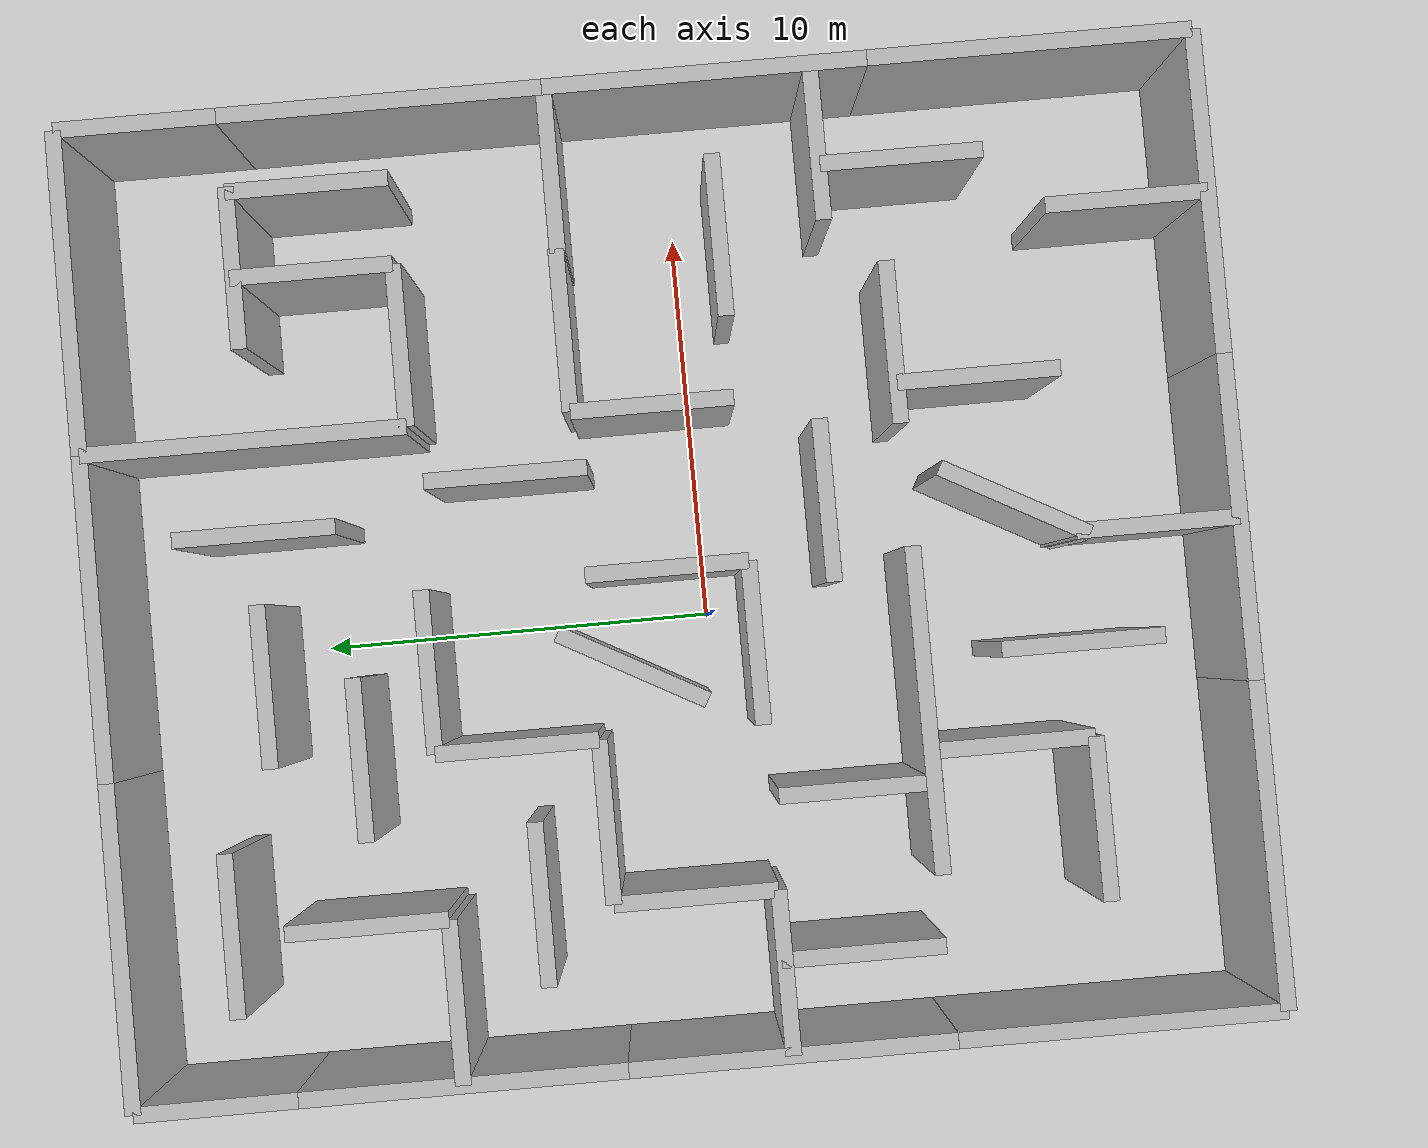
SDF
<sdf version="1.7">
 <world name="default">
  <light name="sun" type="directional">
   <pose>0 0 10 0 -0 0</pose>
   <diffuse>0.8 0.8 0.8 1</diffuse>
   <specular>0.2 0.2 0.2 1</specular>
   <attenuation>
    <range>1000</range>
    <constant>0.9</constant>
    <linear>0.01</linear>
    <quadratic>0.001</quadratic>
   </attenuation>
   <direction>-0.5 0.1 -0.9</direction>
   <spot><inner_angle>0</inner_angle><outer_angle>0</outer_angle><falloff>0</falloff></spot>
  </light>
  <model name="ground_plane">
   <static>1</static>
   <link name="link">
    <collision name="collision">
     <geometry><plane><normal>0 0 1</normal><size>100 100</size></plane></geometry>
     <surface><friction><ode><mu>100</mu><mu2>50</mu2></ode></friction></surface>
    </collision>
    <visual name="visual">
     <cast_shadows>0</cast_shadows>
     <geometry><plane><normal>0 0 1</normal><size>100 100</size></plane></geometry>
     <material>
      <script><uri>file://media/materials/scripts/gazebo.material</uri><name>Gazebo/Grey</name></script>
     </material>
    </visual>
   </link>
  </model>
  <gravity>0 0 -9.8</gravity>
  <magnetic_field>6e-06 2.3e-05 -4.2e-05</magnetic_field>
  <atmosphere type="adiabatic"/>
  <physics type="ode">
   <max_step_size>0.001</max_step_size>
   <real_time_factor>1</real_time_factor>
   <real_time_update_rate>1000</real_time_update_rate>
  </physics>
  <scene><ambient>0.4 0.4 0.4 1</ambient><background>0.7 0.7 0.7 1</background><shadows>1</shadows></scene>
  <audio><device>default</device></audio>
  <spherical_coordinates>
   <surface_model>EARTH_WGS84</surface_model>
   <latitude_deg>0</latitude_deg>
   <longitude_deg>0</longitude_deg>
   <elevation>0</elevation>
   <heading_deg>0</heading_deg>
  </spherical_coordinates>
  <model name="smaze2d">
   <frame name="w1::__model__" attached_to="w1::link">
    <pose relative_to="__model__">0 4 0 0 -0 1.5708</pose>
   </frame>
   <static>1</static>
   <link name="w1::link">
    <pose relative_to="w1::__model__">0 0 2.5 0 -0 0</pose>
    <collision name="collision"><geometry><box><size>8 0.4 5</size></box></geometry></collision>
    <visual name="visual">
     <geometry><box><size>8 0.4 5</size></box></geometry>
     <material>
      <script>
       <uri>model://smaze_wall/materials/scripts</uri>
       <uri>model://smaze_wall/materials/textures</uri>
       <name>vrc/smaze_wall</name>
      </script>
     </material>
    </visual>
   </link>
   <frame name="w2::__model__" attached_to="w2::link">
    <pose relative_to="__model__">0 12 0 0 -0 1.5708</pose>
   </frame>
   <static>1</static>
   <link name="w2::link">
    <pose relative_to="w2::__model__">0 0 2.5 0 -0 0</pose>
    <collision name="collision"><geometry><box><size>8 0.4 5</size></box></geometry></collision>
    <visual name="visual">
     <geometry><box><size>8 0.4 5</size></box></geometry>
     <material>
      <script>
       <uri>model://smaze_wall/materials/scripts</uri>
       <uri>model://smaze_wall/materials/textures</uri>
       <name>vrc/smaze_wall</name>
      </script>
     </material>
    </visual>
   </link>
   <frame name="w3::__model__" attached_to="w3::link">
    <pose relative_to="__model__">0 20 0 0 -0 1.5708</pose>
   </frame>
   <static>1</static>
   <link name="w3::link">
    <pose relative_to="w3::__model__">0 0 2.5 0 -0 0</pose>
    <collision name="collision"><geometry><box><size>8 0.4 5</size></box></geometry></collision>
    <visual name="visual">
     <geometry><box><size>8 0.4 5</size></box></geometry>
     <material>
      <script>
       <uri>model://smaze_wall/materials/scripts</uri>
       <uri>model://smaze_wall/materials/textures</uri>
       <name>vrc/smaze_wall</name>
      </script>
     </material>
    </visual>
   </link>
   <frame name="w4::__model__" attached_to="w4::link">
    <pose relative_to="__model__">0 26 0 0 -0 1.5708</pose>
   </frame>
   <static>1</static>
   <link name="w4::link">
    <pose relative_to="w4::__model__">0 0 2.5 0 -0 0</pose>
    <collision name="collision"><geometry><box><size>4 0.4 5</size></box></geometry></collision>
    <visual name="visual">
     <geometry><box><size>4 0.4 5</size></box></geometry>
     <material>
      <script>
       <uri>model://smaze_wall_short/materials/scripts</uri>
       <uri>model://smaze_wall_short/materials/textures</uri>
       <name>vrc/smaze_wall_short</name>
      </script>
     </material>
    </visual>
   </link>
   <frame name="w5::__model__" attached_to="w5::link">
    <pose relative_to="__model__">24 4 0 0 -0 1.5708</pose>
   </frame>
   <static>1</static>
   <link name="w5::link">
    <pose relative_to="w5::__model__">0 0 2.5 0 -0 0</pose>
    <collision name="collision"><geometry><box><size>8 0.4 5</size></box></geometry></collision>
    <visual name="visual">
     <geometry><box><size>8 0.4 5</size></box></geometry>
     <material>
      <script>
       <uri>model://smaze_wall/materials/scripts</uri>
       <uri>model://smaze_wall/materials/textures</uri>
       <name>vrc/smaze_wall</name>
      </script>
     </material>
    </visual>
   </link>
   <frame name="w6::__model__" attached_to="w6::link">
    <pose relative_to="__model__">24 12 0 0 -0 1.5708</pose>
   </frame>
   <static>1</static>
   <link name="w6::link">
    <pose relative_to="w6::__model__">0 0 2.5 0 -0 0</pose>
    <collision name="collision"><geometry><box><size>8 0.4 5</size></box></geometry></collision>
    <visual name="visual">
     <geometry><box><size>8 0.4 5</size></box></geometry>
     <material>
      <script>
       <uri>model://smaze_wall/materials/scripts</uri>
       <uri>model://smaze_wall/materials/textures</uri>
       <name>vrc/smaze_wall</name>
      </script>
     </material>
    </visual>
   </link>
   <frame name="w7::__model__" attached_to="w7::link">
    <pose relative_to="__model__">24 20 0 0 -0 1.5708</pose>
   </frame>
   <static>1</static>
   <link name="w7::link">
    <pose relative_to="w7::__model__">0 0 2.5 0 -0 0</pose>
    <collision name="collision"><geometry><box><size>8 0.4 5</size></box></geometry></collision>
    <visual name="visual">
     <geometry><box><size>8 0.4 5</size></box></geometry>
     <material>
      <script>
       <uri>model://smaze_wall/materials/scripts</uri>
       <uri>model://smaze_wall/materials/textures</uri>
       <name>vrc/smaze_wall</name>
      </script>
     </material>
    </visual>
   </link>
   <frame name="w8::__model__" attached_to="w8::link">
    <pose relative_to="__model__">24 26 0 0 -0 1.5708</pose>
   </frame>
   <static>1</static>
   <link name="w8::link">
    <pose relative_to="w8::__model__">0 0 2.5 0 -0 0</pose>
    <collision name="collision"><geometry><box><size>4 0.4 5</size></box></geometry></collision>
    <visual name="visual">
     <geometry><box><size>4 0.4 5</size></box></geometry>
     <material>
      <script>
       <uri>model://smaze_wall_short/materials/scripts</uri>
       <uri>model://smaze_wall_short/materials/textures</uri>
       <name>vrc/smaze_wall_short</name>
      </script>
     </material>
    </visual>
   </link>
   <frame name="w11::__model__" attached_to="w11::link"><pose relative_to="__model__">4 0 0 0 -0 0</pose></frame>
   <static>1</static>
   <link name="w11::link">
    <pose relative_to="w11::__model__">0 0 2.5 0 -0 0</pose>
    <collision name="collision"><geometry><box><size>8 0.4 5</size></box></geometry></collision>
    <visual name="visual">
     <geometry><box><size>8 0.4 5</size></box></geometry>
     <material>
      <script>
       <uri>model://smaze_wall/materials/scripts</uri>
       <uri>model://smaze_wall/materials/textures</uri>
       <name>vrc/smaze_wall</name>
      </script>
     </material>
    </visual>
   </link>
   <frame name="w12::__model__" attached_to="w12::link">
    <pose relative_to="__model__">12 0 0 0 -0 0</pose>
   </frame>
   <static>1</static>
   <link name="w12::link">
    <pose relative_to="w12::__model__">0 0 2.5 0 -0 0</pose>
    <collision name="collision"><geometry><box><size>8 0.4 5</size></box></geometry></collision>
    <visual name="visual">
     <geometry><box><size>8 0.4 5</size></box></geometry>
     <material>
      <script>
       <uri>model://smaze_wall/materials/scripts</uri>
       <uri>model://smaze_wall/materials/textures</uri>
       <name>vrc/smaze_wall</name>
      </script>
     </material>
    </visual>
   </link>
   <frame name="w13::__model__" attached_to="w13::link">
    <pose relative_to="__model__">20 0 0 0 -0 0</pose>
   </frame>
   <static>1</static>
   <link name="w13::link">
    <pose relative_to="w13::__model__">0 0 2.5 0 -0 0</pose>
    <collision name="collision"><geometry><box><size>8 0.4 5</size></box></geometry></collision>
    <visual name="visual">
     <geometry><box><size>8 0.4 5</size></box></geometry>
     <material>
      <script>
       <uri>model://smaze_wall/materials/scripts</uri>
       <uri>model://smaze_wall/materials/textures</uri>
       <name>vrc/smaze_wall</name>
      </script>
     </material>
    </visual>
   </link>
   <frame name="w14::__model__" attached_to="w14::link">
    <pose relative_to="__model__">4 28 0 0 -0 0</pose>
   </frame>
   <static>1</static>
   <link name="w14::link">
    <pose relative_to="w14::__model__">0 0 2.5 0 -0 0</pose>
    <collision name="collision"><geometry><box><size>8 0.4 5</size></box></geometry></collision>
    <visual name="visual">
     <geometry><box><size>8 0.4 5</size></box></geometry>
     <material>
      <script>
       <uri>model://smaze_wall/materials/scripts</uri>
       <uri>model://smaze_wall/materials/textures</uri>
       <name>vrc/smaze_wall</name>
      </script>
     </material>
    </visual>
   </link>
   <frame name="w15::__model__" attached_to="w15::link">
    <pose relative_to="__model__">12 28 0 0 -0 0</pose>
   </frame>
   <static>1</static>
   <link name="w15::link">
    <pose relative_to="w15::__model__">0 0 2.5 0 -0 0</pose>
    <collision name="collision"><geometry><box><size>8 0.4 5</size></box></geometry></collision>
    <visual name="visual">
     <geometry><box><size>8 0.4 5</size></box></geometry>
     <material>
      <script>
       <uri>model://smaze_wall/materials/scripts</uri>
       <uri>model://smaze_wall/materials/textures</uri>
       <name>vrc/smaze_wall</name>
      </script>
     </material>
    </visual>
   </link>
   <frame name="w16::__model__" attached_to="w16::link">
    <pose relative_to="__model__">20 28 0 0 -0 0</pose>
   </frame>
   <static>1</static>
   <link name="w16::link">
    <pose relative_to="w16::__model__">0 0 2.5 0 -0 0</pose>
    <collision name="collision"><geometry><box><size>8 0.4 5</size></box></geometry></collision>
    <visual name="visual">
     <geometry><box><size>8 0.4 5</size></box></geometry>
     <material>
      <script>
       <uri>model://smaze_wall/materials/scripts</uri>
       <uri>model://smaze_wall/materials/textures</uri>
       <name>vrc/smaze_wall</name>
      </script>
     </material>
    </visual>
   </link>
   <frame name="w17::__model__" attached_to="w17::link">
    <pose relative_to="__model__">10 24 0 0 -0 0</pose>
   </frame>
   <static>1</static>
   <link name="w17::link">
    <pose relative_to="w17::__model__">0 0 2.5 0 -0 0</pose>
    <collision name="collision"><geometry><box><size>4 0.4 5</size></box></geometry></collision>
    <visual name="visual">
     <geometry><box><size>4 0.4 5</size></box></geometry>
     <material>
      <script>
       <uri>model://smaze_wall_short/materials/scripts</uri>
       <uri>model://smaze_wall_short/materials/textures</uri>
       <name>vrc/smaze_wall_short</name>
      </script>
     </material>
    </visual>
   </link>
   <frame name="w18::__model__" attached_to="w18::link">
    <pose relative_to="__model__">10 12 0 0 -0 0</pose>
   </frame>
   <static>1</static>
   <link name="w18::link">
    <pose relative_to="w18::__model__">0 0 2.5 0 -0 0</pose>
    <collision name="collision"><geometry><box><size>4 0.4 5</size></box></geometry></collision>
    <visual name="visual">
     <geometry><box><size>4 0.4 5</size></box></geometry>
     <material>
      <script>
       <uri>model://smaze_wall_short/materials/scripts</uri>
       <uri>model://smaze_wall_short/materials/textures</uri>
       <name>vrc/smaze_wall_short</name>
      </script>
     </material>
    </visual>
   </link>
   <frame name="w19::__model__" attached_to="w19::link"><pose relative_to="__model__">8 8 0 0 -0 0</pose></frame>
   <static>1</static>
   <link name="w19::link">
    <pose relative_to="w19::__model__">0 0 2.5 0 -0 0</pose>
    <collision name="collision"><geometry><box><size>8 0.4 5</size></box></geometry></collision>
    <visual name="visual">
     <geometry><box><size>8 0.4 5</size></box></geometry>
     <material>
      <script>
       <uri>model://smaze_wall/materials/scripts</uri>
       <uri>model://smaze_wall/materials/textures</uri>
       <name>vrc/smaze_wall</name>
      </script>
     </material>
    </visual>
   </link>
   <frame name="w20::__model__" attached_to="w20::link"><pose relative_to="__model__">5 4 0 0 -0 0</pose></frame>
   <static>1</static>
   <link name="w20::link">
    <pose relative_to="w20::__model__">0 0 2.5 0 -0 0</pose>
    <collision name="collision"><geometry><box><size>4 0.4 5</size></box></geometry></collision>
    <visual name="visual">
     <geometry><box><size>4 0.4 5</size></box></geometry>
     <material>
      <script>
       <uri>model://smaze_wall_short/materials/scripts</uri>
       <uri>model://smaze_wall_short/materials/textures</uri>
       <name>vrc/smaze_wall_short</name>
      </script>
     </material>
    </visual>
   </link>
   <frame name="w21::__model__" attached_to="w21::link">
    <pose relative_to="__model__">17 8 0 0 -0 0</pose>
   </frame>
   <static>1</static>
   <link name="w21::link">
    <pose relative_to="w21::__model__">0 0 2.5 0 -0 0</pose>
    <collision name="collision"><geometry><box><size>4 0.4 5</size></box></geometry></collision>
    <visual name="visual">
     <geometry><box><size>4 0.4 5</size></box></geometry>
     <material>
      <script>
       <uri>model://smaze_wall_short/materials/scripts</uri>
       <uri>model://smaze_wall_short/materials/textures</uri>
       <name>vrc/smaze_wall_short</name>
      </script>
     </material>
    </visual>
   </link>
   <frame name="w22::__model__" attached_to="w22::link">
    <pose relative_to="__model__">20 12 0 0 -0 0</pose>
   </frame>
   <static>1</static>
   <link name="w22::link">
    <pose relative_to="w22::__model__">0 0 2.5 0 -0 0</pose>
    <collision name="collision"><geometry><box><size>4 0.4 5</size></box></geometry></collision>
    <visual name="visual">
     <geometry><box><size>4 0.4 5</size></box></geometry>
     <material>
      <script>
       <uri>model://smaze_wall_short/materials/scripts</uri>
       <uri>model://smaze_wall_short/materials/textures</uri>
       <name>vrc/smaze_wall_short</name>
      </script>
     </material>
    </visual>
   </link>
   <frame name="w23::__model__" attached_to="w23::link">
    <pose relative_to="__model__">16 24 0 0 -0 1.5708</pose>
   </frame>
   <static>1</static>
   <link name="w23::link">
    <pose relative_to="w23::__model__">0 0 2.5 0 -0 0</pose>
    <collision name="collision"><geometry><box><size>8 0.4 5</size></box></geometry></collision>
    <visual name="visual">
     <geometry><box><size>8 0.4 5</size></box></geometry>
     <material>
      <script>
       <uri>model://smaze_wall/materials/scripts</uri>
       <uri>model://smaze_wall/materials/textures</uri>
       <name>vrc/smaze_wall</name>
      </script>
     </material>
    </visual>
   </link>
   <frame name="s1::__model__" attached_to="s1::link">
    <pose relative_to="__model__">20 22 0 0 -0 1.5708</pose>
   </frame>
   <static>1</static>
   <link name="s1::link">
    <pose relative_to="s1::__model__">0 0 2.5 0 -0 0</pose>
    <collision name="collision"><geometry><box><size>4 0.4 5</size></box></geometry></collision>
    <visual name="visual">
     <geometry><box><size>4 0.4 5</size></box></geometry>
     <material>
      <script>
       <uri>model://smaze_wall_short/materials/scripts</uri>
       <uri>model://smaze_wall_short/materials/textures</uri>
       <name>vrc/smaze_wall_short</name>
      </script>
     </material>
    </visual>
   </link>
   <frame name="s2::__model__" attached_to="s2::link">
    <pose relative_to="__model__">16 14 0 0 -0 1.5708</pose>
   </frame>
   <static>1</static>
   <link name="s2::link">
    <pose relative_to="s2::__model__">0 0 2.5 0 -0 0</pose>
    <collision name="collision"><geometry><box><size>4 0.4 5</size></box></geometry></collision>
    <visual name="visual">
     <geometry><box><size>4 0.4 5</size></box></geometry>
     <material>
      <script>
       <uri>model://smaze_wall_short/materials/scripts</uri>
       <uri>model://smaze_wall_short/materials/textures</uri>
       <name>vrc/smaze_wall_short</name>
      </script>
     </material>
    </visual>
   </link>
   <frame name="s3::__model__" attached_to="s3::link">
    <pose relative_to="__model__">16 6 0 0 -0 1.5708</pose>
   </frame>
   <static>1</static>
   <link name="s3::link">
    <pose relative_to="s3::__model__">0 0 2.5 0 -0 0</pose>
    <collision name="collision"><geometry><box><size>4 0.4 5</size></box></geometry></collision>
    <visual name="visual">
     <geometry><box><size>4 0.4 5</size></box></geometry>
     <material>
      <script>
       <uri>model://smaze_wall_short/materials/scripts</uri>
       <uri>model://smaze_wall_short/materials/textures</uri>
       <name>vrc/smaze_wall_short</name>
      </script>
     </material>
    </visual>
   </link>
   <frame name="s4::__model__" attached_to="s4::link">
    <pose relative_to="__model__">20 2 0 0 -0 1.5708</pose>
   </frame>
   <static>1</static>
   <link name="s4::link">
    <pose relative_to="s4::__model__">0 0 2.5 0 -0 0</pose>
    <collision name="collision"><geometry><box><size>4 0.4 5</size></box></geometry></collision>
    <visual name="visual">
     <geometry><box><size>4 0.4 5</size></box></geometry>
     <material>
      <script>
       <uri>model://smaze_wall_short/materials/scripts</uri>
       <uri>model://smaze_wall_short/materials/textures</uri>
       <name>vrc/smaze_wall_short</name>
      </script>
     </material>
    </visual>
   </link>
   <frame name="s5::__model__" attached_to="s5::link">
    <pose relative_to="__model__">12 2 0 0 -0 1.5708</pose>
   </frame>
   <static>1</static>
   <link name="s5::link">
    <pose relative_to="s5::__model__">0 0 2.5 0 -0 0</pose>
    <collision name="collision"><geometry><box><size>4 0.4 5</size></box></geometry></collision>
    <visual name="visual">
     <geometry><box><size>4 0.4 5</size></box></geometry>
     <material>
      <script>
       <uri>model://smaze_wall_short/materials/scripts</uri>
       <uri>model://smaze_wall_short/materials/textures</uri>
       <name>vrc/smaze_wall_short</name>
      </script>
     </material>
    </visual>
   </link>
   <frame name="s6::__model__" attached_to="s6::link">
    <pose relative_to="__model__">7 6 0 0 -0 1.5708</pose>
   </frame>
   <static>1</static>
   <link name="s6::link">
    <pose relative_to="s6::__model__">0 0 2.5 0 -0 0</pose>
    <collision name="collision"><geometry><box><size>4 0.4 5</size></box></geometry></collision>
    <visual name="visual">
     <geometry><box><size>4 0.4 5</size></box></geometry>
     <material>
      <script>
       <uri>model://smaze_wall_short/materials/scripts</uri>
       <uri>model://smaze_wall_short/materials/textures</uri>
       <name>vrc/smaze_wall_short</name>
      </script>
     </material>
    </visual>
   </link>
   <frame name="s7::__model__" attached_to="s7::link">
    <pose relative_to="__model__">4 14 0 0 -0 1.5708</pose>
   </frame>
   <static>1</static>
   <link name="s7::link">
    <pose relative_to="s7::__model__">0 0 2.5 0 -0 0</pose>
    <collision name="collision"><geometry><box><size>4 0.4 5</size></box></geometry></collision>
    <visual name="visual">
     <geometry><box><size>4 0.4 5</size></box></geometry>
     <material>
      <script>
       <uri>model://smaze_wall_short/materials/scripts</uri>
       <uri>model://smaze_wall_short/materials/textures</uri>
       <name>vrc/smaze_wall_short</name>
      </script>
     </material>
    </visual>
   </link>
   <frame name="s8::__model__" attached_to="s8::link">
    <pose relative_to="__model__">8 18 0 0 -0 1.5708</pose>
   </frame>
   <static>1</static>
   <link name="s8::link">
    <pose relative_to="s8::__model__">0 0 2.5 0 -0 0</pose>
    <collision name="collision"><geometry><box><size>4 0.4 5</size></box></geometry></collision>
    <visual name="visual">
     <geometry><box><size>4 0.4 5</size></box></geometry>
     <material>
      <script>
       <uri>model://smaze_wall_short/materials/scripts</uri>
       <uri>model://smaze_wall_short/materials/textures</uri>
       <name>vrc/smaze_wall_short</name>
      </script>
     </material>
    </visual>
   </link>
   <frame name="s9::__model__" attached_to="s9::link">
    <pose relative_to="__model__">4 22 0 0 -0 1.5708</pose>
   </frame>
   <static>1</static>
   <link name="s9::link">
    <pose relative_to="s9::__model__">0 0 2.5 0 -0 0</pose>
    <collision name="collision"><geometry><box><size>4 0.4 5</size></box></geometry></collision>
    <visual name="visual">
     <geometry><box><size>4 0.4 5</size></box></geometry>
     <material>
      <script>
       <uri>model://smaze_wall_short/materials/scripts</uri>
       <uri>model://smaze_wall_short/materials/textures</uri>
       <name>vrc/smaze_wall_short</name>
      </script>
     </material>
    </visual>
   </link>
   <frame name="s10::__model__" attached_to="s10::link">
    <pose relative_to="__model__">12 14 0 0 -0 1.5708</pose>
   </frame>
   <static>1</static>
   <link name="s10::link">
    <pose relative_to="s10::__model__">0 0 2.5 0 -0 0</pose>
    <collision name="collision"><geometry><box><size>4 0.4 5</size></box></geometry></collision>
    <visual name="visual">
     <geometry><box><size>4 0.4 5</size></box></geometry>
     <material>
      <script>
       <uri>model://smaze_wall_short/materials/scripts</uri>
       <uri>model://smaze_wall_short/materials/textures</uri>
       <name>vrc/smaze_wall_short</name>
      </script>
     </material>
    </visual>
   </link>
   <frame name="v1::__model__" attached_to="v1::link"><pose relative_to="__model__">2 12 0 0 -0 0</pose></frame>
   <static>1</static>
   <link name="v1::link">
    <pose relative_to="v1::__model__">0 0 2.5 0 -0 0</pose>
    <collision name="collision"><geometry><box><size>4 0.4 5</size></box></geometry></collision>
    <visual name="visual">
     <geometry><box><size>4 0.4 5</size></box></geometry>
     <material>
      <script>
       <uri>model://smaze_wall_short/materials/scripts</uri>
       <uri>model://smaze_wall_short/materials/textures</uri>
       <name>vrc/smaze_wall_short</name>
      </script>
     </material>
    </visual>
   </link>
   <frame name="v2::__model__" attached_to="v2::link"><pose relative_to="__model__">2 20 0 0 -0 0</pose></frame>
   <static>1</static>
   <link name="v2::link">
    <pose relative_to="v2::__model__">0 0 2.5 0 -0 0</pose>
    <collision name="collision"><geometry><box><size>4 0.4 5</size></box></geometry></collision>
    <visual name="visual">
     <geometry><box><size>4 0.4 5</size></box></geometry>
     <material>
      <script>
       <uri>model://smaze_wall_short/materials/scripts</uri>
       <uri>model://smaze_wall_short/materials/textures</uri>
       <name>vrc/smaze_wall_short</name>
      </script>
     </material>
    </visual>
   </link>
   <frame name="v3::__model__" attached_to="v3::link"><pose relative_to="__model__">6 16 0 0 -0 0</pose></frame>
   <static>1</static>
   <link name="v3::link">
    <pose relative_to="v3::__model__">0 0 2.5 0 -0 0</pose>
    <collision name="collision"><geometry><box><size>4 0.4 5</size></box></geometry></collision>
    <visual name="visual">
     <geometry><box><size>4 0.4 5</size></box></geometry>
     <material>
      <script>
       <uri>model://smaze_wall_short/materials/scripts</uri>
       <uri>model://smaze_wall_short/materials/textures</uri>
       <name>vrc/smaze_wall_short</name>
      </script>
     </material>
    </visual>
   </link>
   <frame name="v4::__model__" attached_to="v4::link"><pose relative_to="__model__">10 20 0 0 -0 0</pose></frame>
   <static>1</static>
   <link name="v4::link">
    <pose relative_to="v4::__model__">0 0 2.5 0 -0 0</pose>
    <collision name="collision"><geometry><box><size>4 0.4 5</size></box></geometry></collision>
    <visual name="visual">
     <geometry><box><size>4 0.4 5</size></box></geometry>
     <material>
      <script>
       <uri>model://smaze_wall_short/materials/scripts</uri>
       <uri>model://smaze_wall_short/materials/textures</uri>
       <name>vrc/smaze_wall_short</name>
      </script>
     </material>
    </visual>
   </link>
   <frame name="v5::__model__" attached_to="v5::link"><pose relative_to="__model__">18 16 0 0 -0 0</pose></frame>
   <static>1</static>
   <link name="v5::link">
    <pose relative_to="v5::__model__">0 0 2.5 0 -0 0</pose>
    <collision name="collision"><geometry><box><size>4 0.4 5</size></box></geometry></collision>
    <visual name="visual">
     <geometry><box><size>4 0.4 5</size></box></geometry>
     <material>
      <script>
       <uri>model://smaze_wall_short/materials/scripts</uri>
       <uri>model://smaze_wall_short/materials/textures</uri>
       <name>vrc/smaze_wall_short</name>
      </script>
     </material>
    </visual>
   </link>
   <frame name="v6::__model__" attached_to="v6::link"><pose relative_to="__model__">18 20 0 0 -0 0</pose></frame>
   <static>1</static>
   <link name="v6::link">
    <pose relative_to="v6::__model__">0 0 2.5 0 -0 0</pose>
    <collision name="collision"><geometry><box><size>4 0.4 5</size></box></geometry></collision>
    <visual name="visual">
     <geometry><box><size>4 0.4 5</size></box></geometry>
     <material>
      <script>
       <uri>model://smaze_wall_short/materials/scripts</uri>
       <uri>model://smaze_wall_short/materials/textures</uri>
       <name>vrc/smaze_wall_short</name>
      </script>
     </material>
    </visual>
   </link>
   <pose>-10.8075 -13.0439 0 0 -0 0</pose>
  </model>
  <model name="smaze_wall_short">
   <static>1</static>
   <link name="link">
    <pose>0 0 2.5 0 -0 0</pose>
    <collision name="collision"><geometry><box><size>4 0.4 5</size></box></geometry></collision>
    <visual name="visual">
     <geometry><box><size>4 0.4 5</size></box></geometry>
     <material>
      <script>
       <uri>model://smaze_wall_short/materials/scripts</uri>
       <uri>model://smaze_wall_short/materials/textures</uri>
       <name>vrc/smaze_wall_short</name>
      </script>
     </material>
    </visual>
   </link>
   <pose>-2.78261 8.78841 0 0 -0 0</pose>
  </model>
  <model name="smaze_wall_short_0">
   <static>1</static>
   <link name="link">
    <pose>0 0 2.5 0 -0 0</pose>
    <collision name="collision"><geometry><box><size>4 0.4 5</size></box></geometry></collision>
    <visual name="visual">
     <geometry><box><size>4 0.4 5</size></box></geometry>
     <material>
      <script>
       <uri>model://smaze_wall_short/materials/scripts</uri>
       <uri>model://smaze_wall_short/materials/textures</uri>
       <name>vrc/smaze_wall_short</name>
      </script>
     </material>
    </visual>
   </link>
   <pose>-6.65479 4.68833 0 0 -0 0</pose>
  </model>
  <model name="smaze_wall_short_clone">
   <static>1</static>
   <link name="link">
    <pose>0 0 2.5 0 -0 0</pose>
    <collision name="collision"><geometry><box><size>4 0.4 5</size></box></geometry></collision>
    <visual name="visual">
     <geometry><box><size>4 0.4 5</size></box></geometry>
     <material>
      <script>
       <uri>model://smaze_wall_short/materials/scripts</uri>
       <uri>model://smaze_wall_short/materials/textures</uri>
       <name>vrc/smaze_wall_short</name>
      </script>
     </material>
    </visual>
   </link>
   <pose>-6.74608 12.2385 0 0 -0 0</pose>
  </model>
  <model name="smaze_wall_short_clone_0">
   <static>1</static>
   <link name="link">
    <pose>0 0 2.5 0 -0 0</pose>
    <collision name="collision"><geometry><box><size>4 0.4 5</size></box></geometry></collision>
    <visual name="visual">
     <geometry><box><size>4 0.4 5</size></box></geometry>
     <material>
      <script>
       <uri>model://smaze_wall_short/materials/scripts</uri>
       <uri>model://smaze_wall_short/materials/textures</uri>
       <name>vrc/smaze_wall_short</name>
      </script>
     </material>
    </visual>
   </link>
   <pose>2.92466 10.8886 0 0 0 -1.57183</pose>
  </model>
  <model name="smaze_wall_short_clone_0_clone">
   <static>1</static>
   <link name="link">
    <pose>0 0 2.5 0 -0 0</pose>
    <collision name="collision"><geometry><box><size>4 0.4 5</size></box></geometry></collision>
    <visual name="visual">
     <geometry><box><size>4 0.4 5</size></box></geometry>
     <material>
      <script>
       <uri>model://smaze_wall_short/materials/scripts</uri>
       <uri>model://smaze_wall_short/materials/textures</uri>
       <name>vrc/smaze_wall_short</name>
      </script>
     </material>
    </visual>
   </link>
   <pose>3.81395 4.66369 0 0 0 -1.57183</pose>
  </model>
  <model name="smaze_wall_short_clone_0_clone_0">
   <static>1</static>
   <link name="link">
    <pose>0 0 2.5 0 -0 0</pose>
    <collision name="collision"><geometry><box><size>4 0.4 5</size></box></geometry></collision>
    <visual name="visual">
     <geometry><box><size>4 0.4 5</size></box></geometry>
     <material>
      <script>
       <uri>model://smaze_wall_short/materials/scripts</uri>
       <uri>model://smaze_wall_short/materials/textures</uri>
       <name>vrc/smaze_wall_short</name>
      </script>
     </material>
    </visual>
   </link>
   <pose>-4.56345 -3.25109 0 0 0 -1.57183</pose>
  </model>
  <model name="smaze_wall_short_clone_0_clone_0_clone">
   <static>1</static>
   <link name="link">
    <pose>0 0 2.5 0 -0 0</pose>
    <collision name="collision"><geometry><box><size>4 0.4 5</size></box></geometry></collision>
    <visual name="visual">
     <geometry><box><size>4 0.4 5</size></box></geometry>
     <material>
      <script>
       <uri>model://smaze_wall_short/materials/scripts</uri>
       <uri>model://smaze_wall_short/materials/textures</uri>
       <name>vrc/smaze_wall_short</name>
      </script>
     </material>
    </visual>
   </link>
   <pose>-1.12897 1.99222 0 0 0 -2.07123</pose>
  </model>
  <model name="smaze_wall_short_clone_0_clone_0_clone_0">
   <static>1</static>
   <link name="link">
    <pose>0 0 2.5 0 -0 0</pose>
    <collision name="collision"><geometry><box><size>4 0.4 5</size></box></geometry></collision>
    <visual name="visual">
     <geometry><box><size>4 0.4 5</size></box></geometry>
     <material>
      <script>
       <uri>model://smaze_wall_short/materials/scripts</uri>
       <uri>model://smaze_wall_short/materials/textures</uri>
       <name>vrc/smaze_wall_short</name>
      </script>
     </material>
    </visual>
   </link>
   <pose>-8.51066 -2.96407 0 0 0 -1.57183</pose>
  </model>
  <model name="smaze_wall_short_clone_0_clone_0_clone_1">
   <static>1</static>
   <link name="link">
    <pose>0 0 2.5 0 -0 0</pose>
    <collision name="collision"><geometry><box><size>4 0.4 5</size></box></geometry></collision>
    <visual name="visual">
     <geometry><box><size>4 0.4 5</size></box></geometry>
     <material>
      <script>
       <uri>model://smaze_wall_short/materials/scripts</uri>
       <uri>model://smaze_wall_short/materials/textures</uri>
       <name>vrc/smaze_wall_short</name>
      </script>
     </material>
    </visual>
   </link>
   <pose>-1.51031 -8.9621 0 0 0 -1.57183</pose>
  </model>
  <model name="smaze_wall_short_clone_1">
   <static>1</static>
   <link name="link">
    <pose>0 0 2.5 0 -0 0</pose>
    <collision name="collision"><geometry><box><size>4 0.4 5</size></box></geometry></collision>
    <visual name="visual">
     <geometry><box><size>4 0.4 5</size></box></geometry>
     <material>
      <script>
       <uri>model://smaze_wall_short/materials/scripts</uri>
       <uri>model://smaze_wall_short/materials/textures</uri>
       <name>vrc/smaze_wall_short</name>
      </script>
     </material>
    </visual>
   </link>
   <pose>2.4891 -3.07398 0 0 -0 0</pose>
  </model>
  <model name="smaze_wall_short_clone_0_clone_0_clone_clone">
   <static>1</static>
   <link name="link">
    <pose>0 0 2.5 0 -0 0</pose>
    <collision name="collision"><geometry><box><size>4 0.4 5</size></box></geometry></collision>
    <visual name="visual">
     <geometry><box><size>4 0.4 5</size></box></geometry>
     <material>
      <script>
       <uri>model://smaze_wall_short/materials/scripts</uri>
       <uri>model://smaze_wall_short/materials/textures</uri>
       <name>vrc/smaze_wall_short</name>
      </script>
     </material>
    </visual>
   </link>
   <pose>2.06914 -7.62845 0 0 0 -2.07123</pose>
  </model>
  <model name="smaze_wall_short_clone_0_clone_clone">
   <static>1</static>
   <link name="link">
    <pose>0 0 2.5 0 -0 0</pose>
    <collision name="collision"><geometry><box><size>4 0.4 5</size></box></geometry></collision>
    <visual name="visual">
     <geometry><box><size>4 0.4 5</size></box></geometry>
     <material>
      <script>
       <uri>model://smaze_wall_short/materials/scripts</uri>
       <uri>model://smaze_wall_short/materials/textures</uri>
       <name>vrc/smaze_wall_short</name>
      </script>
     </material>
    </visual>
   </link>
   <pose>10.6983 -5.65898 0 0 0 -1.57183</pose>
  </model>
  <model name="smaze_wall_short_clone_1_clone">
   <static>1</static>
   <link name="link">
    <pose>0 0 2.5 0 -0 0</pose>
    <collision name="collision"><geometry><box><size>4 0.4 5</size></box></geometry></collision>
    <visual name="visual">
     <geometry><box><size>4 0.4 5</size></box></geometry>
     <material>
      <script>
       <uri>model://smaze_wall_short/materials/scripts</uri>
       <uri>model://smaze_wall_short/materials/textures</uri>
       <name>vrc/smaze_wall_short</name>
      </script>
     </material>
    </visual>
   </link>
   <pose>11.3221 -3.63162 0 0 -0 0</pose>
  </model>
  <model name="smaze_wall_short_clone_1_clone_clone">
   <static>1</static>
   <link name="link">
    <pose>0 0 2.5 0 -0 0</pose>
    <collision name="collision"><geometry><box><size>4 0.4 5</size></box></geometry></collision>
    <visual name="visual">
     <geometry><box><size>4 0.4 5</size></box></geometry>
     <material>
      <script>
       <uri>model://smaze_wall_short/materials/scripts</uri>
       <uri>model://smaze_wall_short/materials/textures</uri>
       <name>vrc/smaze_wall_short</name>
      </script>
     </material>
    </visual>
   </link>
   <pose>11.0907 2.91711 0 0 -0 0</pose>
  </model>
  <model name="smaze_wall_short_clone_0_clone_clone_clone">
   <static>1</static>
   <link name="link">
    <pose>0 0 2.5 0 -0 0</pose>
    <collision name="collision"><geometry><box><size>4 0.4 5</size></box></geometry></collision>
    <visual name="visual">
     <geometry><box><size>4 0.4 5</size></box></geometry>
     <material>
      <script>
       <uri>model://smaze_wall_short/materials/scripts</uri>
       <uri>model://smaze_wall_short/materials/textures</uri>
       <name>vrc/smaze_wall_short</name>
      </script>
     </material>
    </visual>
   </link>
   <pose>11.3091 8.8896 0 0 0 -1.57183</pose>
  </model>
  <model name="smaze_wall_short_clone_1_clone_clone_0">
   <static>1</static>
   <link name="link">
    <pose>0 0 2.5 0 -0 0</pose>
    <collision name="collision"><geometry><box><size>4 0.4 5</size></box></geometry></collision>
    <visual name="visual">
     <geometry><box><size>4 0.4 5</size></box></geometry>
     <material>
      <script>
       <uri>model://smaze_wall_short/materials/scripts</uri>
       <uri>model://smaze_wall_short/materials/textures</uri>
       <name>vrc/smaze_wall_short</name>
      </script>
     </material>
    </visual>
   </link>
   <pose>9.43637 10.8612 0 0 -0 0</pose>
  </model>
 </world>
</sdf>
